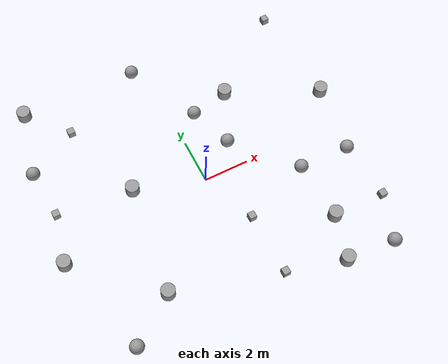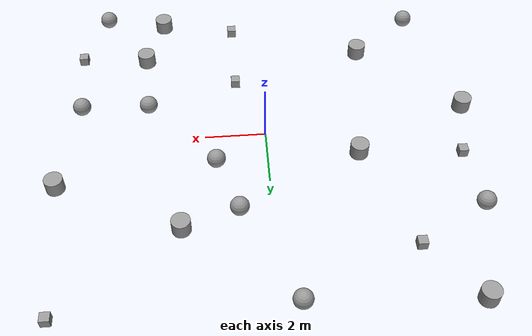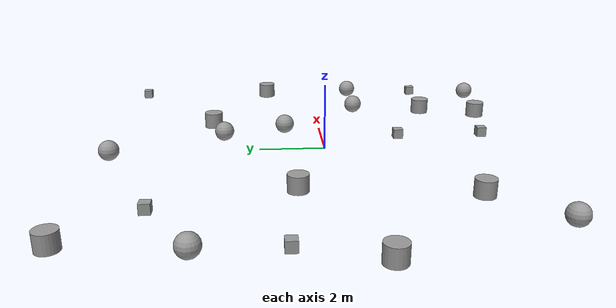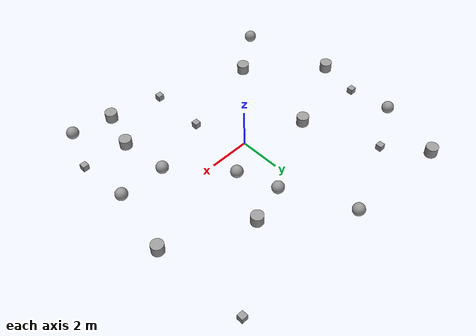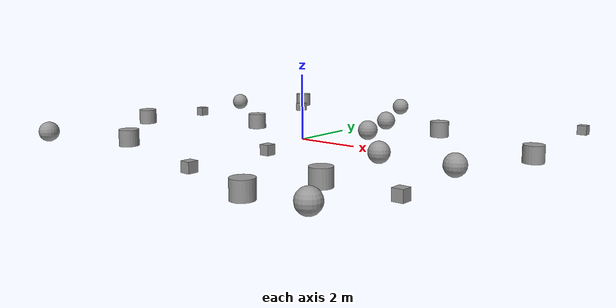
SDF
<?xml version='1.0'?>
<sdf version='1.7'>
  <model name='environment'>
    <link name='link_0'>
      <inertial>
        <mass>1</mass>
        <inertia>
          <ixx>0.166667</ixx>
          <ixy>0</ixy>
          <ixz>0</ixz>
          <iyy>0.166667</iyy>
          <iyz>0</iyz>
          <izz>0.166667</izz>
        </inertia>
        <pose frame=''>0 0 0 0 -0 0</pose>
      </inertial>
      <pose frame=''>0.908194 -5.21027 0.15 0 -0 0</pose>
      <gravity>1</gravity>
      <self_collide>0</self_collide>
      <kinematic>0</kinematic>
      <enable_wind>0</enable_wind>
      <visual name='visual'>
        <pose frame=''>0 0 0 0 -0 0</pose>
        <geometry>
          <box>
            <size>0.3 0.3 0.3</size>
          </box>
        </geometry>
        <material>
          <lighting>1</lighting>
          <script>
            <uri>file://media/materials/scripts/gazebo.material</uri>
            <name>Gazebo/Grey</name>
          </script>
          <shader type='vertex'>
            <normal_map>__default__</normal_map>
          </shader>
          <ambient>0.3 0.3 0.3 1</ambient>
          <diffuse>0.7 0.7 0.7 1</diffuse>
          <specular>0.01 0.01 0.01 1</specular>
          <emissive>0 0 0 1</emissive>
        </material>
        <transparency>0</transparency>
        <cast_shadows>1</cast_shadows>
      </visual>
      <collision name='collision'>
        <laser_retro>0</laser_retro>
        <max_contacts>10</max_contacts>
        <pose frame=''>0 0 0 0 -0 0</pose>
        <geometry>
          <box>
            <size>0.3 0.3 0.3</size>
          </box>
        </geometry>
        <surface>
          <friction>
            <ode>
              <mu>1</mu>
              <mu2>1</mu2>
              <fdir1>0 0 0</fdir1>
              <slip1>0</slip1>
              <slip2>0</slip2>
            </ode>
            <torsional>
              <coefficient>1</coefficient>
              <patch_radius>0</patch_radius>
              <surface_radius>0</surface_radius>
              <use_patch_radius>1</use_patch_radius>
              <ode>
                <slip>0</slip>
              </ode>
            </torsional>
          </friction>
          <bounce>
            <restitution_coefficient>0</restitution_coefficient>
            <threshold>1e+06</threshold>
          </bounce>
          <contact>
            <collide_without_contact>0</collide_without_contact>
            <collide_without_contact_bitmask>1</collide_without_contact_bitmask>
            <collide_bitmask>1</collide_bitmask>
            <ode>
              <soft_cfm>0</soft_cfm>
              <soft_erp>0.2</soft_erp>
              <kp>1e+13</kp>
              <kd>1</kd>
              <max_vel>0.01</max_vel>
              <min_depth>0</min_depth>
            </ode>
            <bullet>
              <split_impulse>1</split_impulse>
              <split_impulse_penetration_threshold>-0.01</split_impulse_penetration_threshold>
              <soft_cfm>0</soft_cfm>
              <soft_erp>0.2</soft_erp>
              <kp>1e+13</kp>
              <kd>1</kd>
            </bullet>
          </contact>
        </surface>
      </collision>
    </link>
    <link name='link_0_0'>
      <inertial>
        <mass>1</mass>
        <inertia>
          <ixx>0.145833</ixx>
          <ixy>0</ixy>
          <ixz>0</ixz>
          <iyy>0.145833</iyy>
          <iyz>0</iyz>
          <izz>0.125</izz>
        </inertia>
        <pose frame=''>0 0 0 0 -0 0</pose>
      </inertial>
      <pose frame=''>-5.78943 6.58029 0.15 0 -0 0</pose>
      <gravity>1</gravity>
      <self_collide>0</self_collide>
      <kinematic>0</kinematic>
      <enable_wind>0</enable_wind>
      <visual name='visual'>
        <pose frame=''>0 0 0 0 -0 0</pose>
        <geometry>
          <cylinder>
            <radius>0.3</radius>
            <length>0.5</length>
          </cylinder>
        </geometry>
        <material>
          <lighting>1</lighting>
          <script>
            <uri>file://media/materials/scripts/gazebo.material</uri>
            <name>Gazebo/Grey</name>
          </script>
          <shader type='vertex'>
            <normal_map>__default__</normal_map>
          </shader>
          <ambient>0.3 0.3 0.3 1</ambient>
          <diffuse>0.7 0.7 0.7 1</diffuse>
          <specular>0.01 0.01 0.01 1</specular>
          <emissive>0 0 0 1</emissive>
        </material>
        <transparency>0</transparency>
        <cast_shadows>1</cast_shadows>
      </visual>
      <collision name='collision'>
        <laser_retro>0</laser_retro>
        <max_contacts>10</max_contacts>
        <pose frame=''>0 0 0 0 -0 0</pose>
        <geometry>
          <cylinder>
            <radius>0.3</radius>
            <length>0.5</length>
          </cylinder>
        </geometry>
        <surface>
          <friction>
            <ode>
              <mu>1</mu>
              <mu2>1</mu2>
              <fdir1>0 0 0</fdir1>
              <slip1>0</slip1>
              <slip2>0</slip2>
            </ode>
            <torsional>
              <coefficient>1</coefficient>
              <patch_radius>0</patch_radius>
              <surface_radius>0</surface_radius>
              <use_patch_radius>1</use_patch_radius>
              <ode>
                <slip>0</slip>
              </ode>
            </torsional>
          </friction>
          <bounce>
            <restitution_coefficient>0</restitution_coefficient>
            <threshold>1e+06</threshold>
          </bounce>
          <contact>
            <collide_without_contact>0</collide_without_contact>
            <collide_without_contact_bitmask>1</collide_without_contact_bitmask>
            <collide_bitmask>1</collide_bitmask>
            <ode>
              <soft_cfm>0</soft_cfm>
              <soft_erp>0.2</soft_erp>
              <kp>1e+13</kp>
              <kd>1</kd>
              <max_vel>0.01</max_vel>
              <min_depth>0</min_depth>
            </ode>
            <bullet>
              <split_impulse>1</split_impulse>
              <split_impulse_penetration_threshold>-0.01</split_impulse_penetration_threshold>
              <soft_cfm>0</soft_cfm>
              <soft_erp>0.2</soft_erp>
              <kp>1e+13</kp>
              <kd>1</kd>
            </bullet>
          </contact>
        </surface>
      </collision>
    </link>
    <link name='link_0_0_clone'>
      <inertial>
        <mass>1</mass>
        <inertia>
          <ixx>0.145833</ixx>
          <ixy>0</ixy>
          <ixz>0</ixz>
          <iyy>0.145833</iyy>
          <iyz>0</iyz>
          <izz>0.125</izz>
        </inertia>
        <pose frame=''>0 0 0 0 -0 0</pose>
      </inertial>
      <pose frame=''>2.78522 3.59353 0.15 0 -0 0</pose>
      <gravity>1</gravity>
      <self_collide>0</self_collide>
      <kinematic>0</kinematic>
      <enable_wind>0</enable_wind>
      <visual name='visual_0'>
        <pose frame=''>0 0 0 0 -0 0</pose>
        <geometry>
          <cylinder>
            <radius>0.3</radius>
            <length>0.5</length>
          </cylinder>
        </geometry>
        <material>
          <lighting>1</lighting>
          <script>
            <uri>file://media/materials/scripts/gazebo.material</uri>
            <name>Gazebo/Grey</name>
          </script>
          <shader type='vertex'>
            <normal_map>__default__</normal_map>
          </shader>
          <ambient>0.3 0.3 0.3 1</ambient>
          <diffuse>0.7 0.7 0.7 1</diffuse>
          <specular>0.01 0.01 0.01 1</specular>
          <emissive>0 0 0 1</emissive>
        </material>
        <transparency>0</transparency>
        <cast_shadows>1</cast_shadows>
      </visual>
      <collision name='collision'>
        <laser_retro>0</laser_retro>
        <max_contacts>10</max_contacts>
        <pose frame=''>0 0 0 0 -0 0</pose>
        <geometry>
          <cylinder>
            <radius>0.3</radius>
            <length>0.5</length>
          </cylinder>
        </geometry>
        <surface>
          <friction>
            <ode>
              <mu>1</mu>
              <mu2>1</mu2>
              <fdir1>0 0 0</fdir1>
              <slip1>0</slip1>
              <slip2>0</slip2>
            </ode>
            <torsional>
              <coefficient>1</coefficient>
              <patch_radius>0</patch_radius>
              <surface_radius>0</surface_radius>
              <use_patch_radius>1</use_patch_radius>
              <ode>
                <slip>0</slip>
              </ode>
            </torsional>
          </friction>
          <bounce>
            <restitution_coefficient>0</restitution_coefficient>
            <threshold>1e+06</threshold>
          </bounce>
          <contact>
            <collide_without_contact>0</collide_without_contact>
            <collide_without_contact_bitmask>1</collide_without_contact_bitmask>
            <collide_bitmask>1</collide_bitmask>
            <ode>
              <soft_cfm>0</soft_cfm>
              <soft_erp>0.2</soft_erp>
              <kp>1e+13</kp>
              <kd>1</kd>
              <max_vel>0.01</max_vel>
              <min_depth>0</min_depth>
            </ode>
            <bullet>
              <split_impulse>1</split_impulse>
              <split_impulse_penetration_threshold>-0.01</split_impulse_penetration_threshold>
              <soft_cfm>0</soft_cfm>
              <soft_erp>0.2</soft_erp>
              <kp>1e+13</kp>
              <kd>1</kd>
            </bullet>
          </contact>
        </surface>
      </collision>
    </link>
    <link name='link_0_0_clone_0'>
      <inertial>
        <mass>1</mass>
        <inertia>
          <ixx>0.145833</ixx>
          <ixy>0</ixy>
          <ixz>0</ixz>
          <iyy>0.145833</iyy>
          <iyz>0</iyz>
          <izz>0.125</izz>
        </inertia>
        <pose frame=''>0 0 0 0 -0 0</pose>
      </inertial>
      <pose frame=''>6.74648 1.73015 0.15 0 -0 0</pose>
      <gravity>1</gravity>
      <self_collide>0</self_collide>
      <kinematic>0</kinematic>
      <enable_wind>0</enable_wind>
      <visual name='visual_0'>
        <pose frame=''>0 0 0 0 -0 0</pose>
        <geometry>
          <cylinder>
            <radius>0.3</radius>
            <length>0.5</length>
          </cylinder>
        </geometry>
        <material>
          <lighting>1</lighting>
          <script>
            <uri>file://media/materials/scripts/gazebo.material</uri>
            <name>Gazebo/Grey</name>
          </script>
          <shader type='vertex'>
            <normal_map>__default__</normal_map>
          </shader>
          <ambient>0.3 0.3 0.3 1</ambient>
          <diffuse>0.7 0.7 0.7 1</diffuse>
          <specular>0.01 0.01 0.01 1</specular>
          <emissive>0 0 0 1</emissive>
        </material>
        <transparency>0</transparency>
        <cast_shadows>1</cast_shadows>
      </visual>
      <collision name='collision'>
        <laser_retro>0</laser_retro>
        <max_contacts>10</max_contacts>
        <pose frame=''>0 0 0 0 -0 0</pose>
        <geometry>
          <cylinder>
            <radius>0.3</radius>
            <length>0.5</length>
          </cylinder>
        </geometry>
        <surface>
          <friction>
            <ode>
              <mu>1</mu>
              <mu2>1</mu2>
              <fdir1>0 0 0</fdir1>
              <slip1>0</slip1>
              <slip2>0</slip2>
            </ode>
            <torsional>
              <coefficient>1</coefficient>
              <patch_radius>0</patch_radius>
              <surface_radius>0</surface_radius>
              <use_patch_radius>1</use_patch_radius>
              <ode>
                <slip>0</slip>
              </ode>
            </torsional>
          </friction>
          <bounce>
            <restitution_coefficient>0</restitution_coefficient>
            <threshold>1e+06</threshold>
          </bounce>
          <contact>
            <collide_without_contact>0</collide_without_contact>
            <collide_without_contact_bitmask>1</collide_without_contact_bitmask>
            <collide_bitmask>1</collide_bitmask>
            <ode>
              <soft_cfm>0</soft_cfm>
              <soft_erp>0.2</soft_erp>
              <kp>1e+13</kp>
              <kd>1</kd>
              <max_vel>0.01</max_vel>
              <min_depth>0</min_depth>
            </ode>
            <bullet>
              <split_impulse>1</split_impulse>
              <split_impulse_penetration_threshold>-0.01</split_impulse_penetration_threshold>
              <soft_cfm>0</soft_cfm>
              <soft_erp>0.2</soft_erp>
              <kp>1e+13</kp>
              <kd>1</kd>
            </bullet>
          </contact>
        </surface>
      </collision>
    </link>
    <link name='link_0_0_clone_1'>
      <inertial>
        <mass>1</mass>
        <inertia>
          <ixx>0.145833</ixx>
          <ixy>0</ixy>
          <ixz>0</ixz>
          <iyy>0.145833</iyy>
          <iyz>0</iyz>
          <izz>0.125</izz>
        </inertia>
        <pose frame=''>0 0 0 0 -0 0</pose>
      </inertial>
      <pose frame=''>4.05011 -3.92433 0.15 0 -0 0</pose>
      <gravity>1</gravity>
      <self_collide>0</self_collide>
      <kinematic>0</kinematic>
      <enable_wind>0</enable_wind>
      <visual name='visual_0'>
        <pose frame=''>0 0 0 0 -0 0</pose>
        <geometry>
          <cylinder>
            <radius>0.3</radius>
            <length>0.5</length>
          </cylinder>
        </geometry>
        <material>
          <lighting>1</lighting>
          <script>
            <uri>file://media/materials/scripts/gazebo.material</uri>
            <name>Gazebo/Grey</name>
          </script>
          <shader type='vertex'>
            <normal_map>__default__</normal_map>
          </shader>
          <ambient>0.3 0.3 0.3 1</ambient>
          <diffuse>0.7 0.7 0.7 1</diffuse>
          <specular>0.01 0.01 0.01 1</specular>
          <emissive>0 0 0 1</emissive>
        </material>
        <transparency>0</transparency>
        <cast_shadows>1</cast_shadows>
      </visual>
      <collision name='collision'>
        <laser_retro>0</laser_retro>
        <max_contacts>10</max_contacts>
        <pose frame=''>0 0 0 0 -0 0</pose>
        <geometry>
          <cylinder>
            <radius>0.3</radius>
            <length>0.5</length>
          </cylinder>
        </geometry>
        <surface>
          <friction>
            <ode>
              <mu>1</mu>
              <mu2>1</mu2>
              <fdir1>0 0 0</fdir1>
              <slip1>0</slip1>
              <slip2>0</slip2>
            </ode>
            <torsional>
              <coefficient>1</coefficient>
              <patch_radius>0</patch_radius>
              <surface_radius>0</surface_radius>
              <use_patch_radius>1</use_patch_radius>
              <ode>
                <slip>0</slip>
              </ode>
            </torsional>
          </friction>
          <bounce>
            <restitution_coefficient>0</restitution_coefficient>
            <threshold>1e+06</threshold>
          </bounce>
          <contact>
            <collide_without_contact>0</collide_without_contact>
            <collide_without_contact_bitmask>1</collide_without_contact_bitmask>
            <collide_bitmask>1</collide_bitmask>
            <ode>
              <soft_cfm>0</soft_cfm>
              <soft_erp>0.2</soft_erp>
              <kp>1e+13</kp>
              <kd>1</kd>
              <max_vel>0.01</max_vel>
              <min_depth>0</min_depth>
            </ode>
            <bullet>
              <split_impulse>1</split_impulse>
              <split_impulse_penetration_threshold>-0.01</split_impulse_penetration_threshold>
              <soft_cfm>0</soft_cfm>
              <soft_erp>0.2</soft_erp>
              <kp>1e+13</kp>
              <kd>1</kd>
            </bullet>
          </contact>
        </surface>
      </collision>
    </link>
    <link name='link_0_0_clone_2'>
      <inertial>
        <mass>1</mass>
        <inertia>
          <ixx>0.145833</ixx>
          <ixy>0</ixy>
          <ixz>0</ixz>
          <iyy>0.145833</iyy>
          <iyz>0</iyz>
          <izz>0.125</izz>
        </inertia>
        <pose frame=''>0 0 0 0 -0 0</pose>
      </inertial>
      <pose frame=''>3.45908 -5.83793 0.15 0 -0 0</pose>
      <gravity>1</gravity>
      <self_collide>0</self_collide>
      <kinematic>0</kinematic>
      <enable_wind>0</enable_wind>
      <visual name='visual_0'>
        <pose frame=''>0 0 0 0 -0 0</pose>
        <geometry>
          <cylinder>
            <radius>0.3</radius>
            <length>0.5</length>
          </cylinder>
        </geometry>
        <material>
          <lighting>1</lighting>
          <script>
            <uri>file://media/materials/scripts/gazebo.material</uri>
            <name>Gazebo/Grey</name>
          </script>
          <shader type='vertex'>
            <normal_map>__default__</normal_map>
          </shader>
          <ambient>0.3 0.3 0.3 1</ambient>
          <diffuse>0.7 0.7 0.7 1</diffuse>
          <specular>0.01 0.01 0.01 1</specular>
          <emissive>0 0 0 1</emissive>
        </material>
        <transparency>0</transparency>
        <cast_shadows>1</cast_shadows>
      </visual>
      <collision name='collision'>
        <laser_retro>0</laser_retro>
        <max_contacts>10</max_contacts>
        <pose frame=''>0 0 0 0 -0 0</pose>
        <geometry>
          <cylinder>
            <radius>0.3</radius>
            <length>0.5</length>
          </cylinder>
        </geometry>
        <surface>
          <friction>
            <ode>
              <mu>1</mu>
              <mu2>1</mu2>
              <fdir1>0 0 0</fdir1>
              <slip1>0</slip1>
              <slip2>0</slip2>
            </ode>
            <torsional>
              <coefficient>1</coefficient>
              <patch_radius>0</patch_radius>
              <surface_radius>0</surface_radius>
              <use_patch_radius>1</use_patch_radius>
              <ode>
                <slip>0</slip>
              </ode>
            </torsional>
          </friction>
          <bounce>
            <restitution_coefficient>0</restitution_coefficient>
            <threshold>1e+06</threshold>
          </bounce>
          <contact>
            <collide_without_contact>0</collide_without_contact>
            <collide_without_contact_bitmask>1</collide_without_contact_bitmask>
            <collide_bitmask>1</collide_bitmask>
            <ode>
              <soft_cfm>0</soft_cfm>
              <soft_erp>0.2</soft_erp>
              <kp>1e+13</kp>
              <kd>1</kd>
              <max_vel>0.01</max_vel>
              <min_depth>0</min_depth>
            </ode>
            <bullet>
              <split_impulse>1</split_impulse>
              <split_impulse_penetration_threshold>-0.01</split_impulse_penetration_threshold>
              <soft_cfm>0</soft_cfm>
              <soft_erp>0.2</soft_erp>
              <kp>1e+13</kp>
              <kd>1</kd>
            </bullet>
          </contact>
        </surface>
      </collision>
    </link>
    <link name='link_0_0_clone_3'>
      <inertial>
        <mass>1</mass>
        <inertia>
          <ixx>0.145833</ixx>
          <ixy>0</ixy>
          <ixz>0</ixz>
          <iyy>0.145833</iyy>
          <iyz>0</iyz>
          <izz>0.125</izz>
        </inertia>
        <pose frame=''>0 0 0 0 -0 0</pose>
      </inertial>
      <pose frame=''>-3.65049 -3.83847 0.15 0 -0 0</pose>
      <gravity>1</gravity>
      <self_collide>0</self_collide>
      <kinematic>0</kinematic>
      <enable_wind>0</enable_wind>
      <visual name='visual_0'>
        <pose frame=''>0 0 0 0 -0 0</pose>
        <geometry>
          <cylinder>
            <radius>0.3</radius>
            <length>0.5</length>
          </cylinder>
        </geometry>
        <material>
          <lighting>1</lighting>
          <script>
            <uri>file://media/materials/scripts/gazebo.material</uri>
            <name>Gazebo/Grey</name>
          </script>
          <shader type='vertex'>
            <normal_map>__default__</normal_map>
          </shader>
          <ambient>0.3 0.3 0.3 1</ambient>
          <diffuse>0.7 0.7 0.7 1</diffuse>
          <specular>0.01 0.01 0.01 1</specular>
          <emissive>0 0 0 1</emissive>
        </material>
        <transparency>0</transparency>
        <cast_shadows>1</cast_shadows>
      </visual>
      <collision name='collision'>
        <laser_retro>0</laser_retro>
        <max_contacts>10</max_contacts>
        <pose frame=''>0 0 0 0 -0 0</pose>
        <geometry>
          <cylinder>
            <radius>0.3</radius>
            <length>0.5</length>
          </cylinder>
        </geometry>
        <surface>
          <friction>
            <ode>
              <mu>1</mu>
              <mu2>1</mu2>
              <fdir1>0 0 0</fdir1>
              <slip1>0</slip1>
              <slip2>0</slip2>
            </ode>
            <torsional>
              <coefficient>1</coefficient>
              <patch_radius>0</patch_radius>
              <surface_radius>0</surface_radius>
              <use_patch_radius>1</use_patch_radius>
              <ode>
                <slip>0</slip>
              </ode>
            </torsional>
          </friction>
          <bounce>
            <restitution_coefficient>0</restitution_coefficient>
            <threshold>1e+06</threshold>
          </bounce>
          <contact>
            <collide_without_contact>0</collide_without_contact>
            <collide_without_contact_bitmask>1</collide_without_contact_bitmask>
            <collide_bitmask>1</collide_bitmask>
            <ode>
              <soft_cfm>0</soft_cfm>
              <soft_erp>0.2</soft_erp>
              <kp>1e+13</kp>
              <kd>1</kd>
              <max_vel>0.01</max_vel>
              <min_depth>0</min_depth>
            </ode>
            <bullet>
              <split_impulse>1</split_impulse>
              <split_impulse_penetration_threshold>-0.01</split_impulse_penetration_threshold>
              <soft_cfm>0</soft_cfm>
              <soft_erp>0.2</soft_erp>
              <kp>1e+13</kp>
              <kd>1</kd>
            </bullet>
          </contact>
        </surface>
      </collision>
    </link>
    <link name='link_0_0_clone_4'>
      <inertial>
        <mass>1</mass>
        <inertia>
          <ixx>0.145833</ixx>
          <ixy>0</ixy>
          <ixz>0</ixz>
          <iyy>0.145833</iyy>
          <iyz>0</iyz>
          <izz>0.125</izz>
        </inertia>
        <pose frame=''>0 0 0 0 -0 0</pose>
      </inertial>
      <pose frame=''>-6.85159 -0.851003 0.15 0 -0 0</pose>
      <gravity>1</gravity>
      <self_collide>0</self_collide>
      <kinematic>0</kinematic>
      <enable_wind>0</enable_wind>
      <visual name='visual_0'>
        <pose frame=''>0 0 0 0 -0 0</pose>
        <geometry>
          <cylinder>
            <radius>0.3</radius>
            <length>0.5</length>
          </cylinder>
        </geometry>
        <material>
          <lighting>1</lighting>
          <script>
            <uri>file://media/materials/scripts/gazebo.material</uri>
            <name>Gazebo/Grey</name>
          </script>
          <shader type='vertex'>
            <normal_map>__default__</normal_map>
          </shader>
          <ambient>0.3 0.3 0.3 1</ambient>
          <diffuse>0.7 0.7 0.7 1</diffuse>
          <specular>0.01 0.01 0.01 1</specular>
          <emissive>0 0 0 1</emissive>
        </material>
        <transparency>0</transparency>
        <cast_shadows>1</cast_shadows>
      </visual>
      <collision name='collision'>
        <laser_retro>0</laser_retro>
        <max_contacts>10</max_contacts>
        <pose frame=''>0 0 0 0 -0 0</pose>
        <geometry>
          <cylinder>
            <radius>0.3</radius>
            <length>0.5</length>
          </cylinder>
        </geometry>
        <surface>
          <friction>
            <ode>
              <mu>1</mu>
              <mu2>1</mu2>
              <fdir1>0 0 0</fdir1>
              <slip1>0</slip1>
              <slip2>0</slip2>
            </ode>
            <torsional>
              <coefficient>1</coefficient>
              <patch_radius>0</patch_radius>
              <surface_radius>0</surface_radius>
              <use_patch_radius>1</use_patch_radius>
              <ode>
                <slip>0</slip>
              </ode>
            </torsional>
          </friction>
          <bounce>
            <restitution_coefficient>0</restitution_coefficient>
            <threshold>1e+06</threshold>
          </bounce>
          <contact>
            <collide_without_contact>0</collide_without_contact>
            <collide_without_contact_bitmask>1</collide_without_contact_bitmask>
            <collide_bitmask>1</collide_bitmask>
            <ode>
              <soft_cfm>0</soft_cfm>
              <soft_erp>0.2</soft_erp>
              <kp>1e+13</kp>
              <kd>1</kd>
              <max_vel>0.01</max_vel>
              <min_depth>0</min_depth>
            </ode>
            <bullet>
              <split_impulse>1</split_impulse>
              <split_impulse_penetration_threshold>-0.01</split_impulse_penetration_threshold>
              <soft_cfm>0</soft_cfm>
              <soft_erp>0.2</soft_erp>
              <kp>1e+13</kp>
              <kd>1</kd>
            </bullet>
          </contact>
        </surface>
      </collision>
    </link>
    <link name='link_0_0_clone_5'>
      <inertial>
        <mass>1</mass>
        <inertia>
          <ixx>0.145833</ixx>
          <ixy>0</ixy>
          <ixz>0</ixz>
          <iyy>0.145833</iyy>
          <iyz>0</iyz>
          <izz>0.125</izz>
        </inertia>
        <pose frame=''>0 0 0 0 -0 0</pose>
      </inertial>
      <pose frame=''>-3.00831 0.980712 0.15 0 -0 0</pose>
      <gravity>1</gravity>
      <self_collide>0</self_collide>
      <kinematic>0</kinematic>
      <enable_wind>0</enable_wind>
      <visual name='visual_0'>
        <pose frame=''>0 0 0 0 -0 0</pose>
        <geometry>
          <cylinder>
            <radius>0.3</radius>
            <length>0.5</length>
          </cylinder>
        </geometry>
        <material>
          <lighting>1</lighting>
          <script>
            <uri>file://media/materials/scripts/gazebo.material</uri>
            <name>Gazebo/Grey</name>
          </script>
          <shader type='vertex'>
            <normal_map>__default__</normal_map>
          </shader>
          <ambient>0.3 0.3 0.3 1</ambient>
          <diffuse>0.7 0.7 0.7 1</diffuse>
          <specular>0.01 0.01 0.01 1</specular>
          <emissive>0 0 0 1</emissive>
        </material>
        <transparency>0</transparency>
        <cast_shadows>1</cast_shadows>
      </visual>
      <collision name='collision'>
        <laser_retro>0</laser_retro>
        <max_contacts>10</max_contacts>
        <pose frame=''>0 0 0 0 -0 0</pose>
        <geometry>
          <cylinder>
            <radius>0.3</radius>
            <length>0.5</length>
          </cylinder>
        </geometry>
        <surface>
          <friction>
            <ode>
              <mu>1</mu>
              <mu2>1</mu2>
              <fdir1>0 0 0</fdir1>
              <slip1>0</slip1>
              <slip2>0</slip2>
            </ode>
            <torsional>
              <coefficient>1</coefficient>
              <patch_radius>0</patch_radius>
              <surface_radius>0</surface_radius>
              <use_patch_radius>1</use_patch_radius>
              <ode>
                <slip>0</slip>
              </ode>
            </torsional>
          </friction>
          <bounce>
            <restitution_coefficient>0</restitution_coefficient>
            <threshold>1e+06</threshold>
          </bounce>
          <contact>
            <collide_without_contact>0</collide_without_contact>
            <collide_without_contact_bitmask>1</collide_without_contact_bitmask>
            <collide_bitmask>1</collide_bitmask>
            <ode>
              <soft_cfm>0</soft_cfm>
              <soft_erp>0.2</soft_erp>
              <kp>1e+13</kp>
              <kd>1</kd>
              <max_vel>0.01</max_vel>
              <min_depth>0</min_depth>
            </ode>
            <bullet>
              <split_impulse>1</split_impulse>
              <split_impulse_penetration_threshold>-0.01</split_impulse_penetration_threshold>
              <soft_cfm>0</soft_cfm>
              <soft_erp>0.2</soft_erp>
              <kp>1e+13</kp>
              <kd>1</kd>
            </bullet>
          </contact>
        </surface>
      </collision>
    </link>
    <link name='link_0_clone'>
      <inertial>
        <mass>1</mass>
        <inertia>
          <ixx>0.166667</ixx>
          <ixy>0</ixy>
          <ixz>0</ixz>
          <iyy>0.166667</iyy>
          <iyz>0</iyz>
          <izz>0.166667</izz>
        </inertia>
        <pose frame=''>0 0 0 0 -0 0</pose>
      </inertial>
      <pose frame=''>0.885003 -2.45891 0.15 0 -0 0</pose>
      <gravity>1</gravity>
      <self_collide>0</self_collide>
      <kinematic>0</kinematic>
      <enable_wind>0</enable_wind>
      <visual name='visual'>
        <pose frame=''>0 0 0 0 -0 0</pose>
        <geometry>
          <box>
            <size>0.3 0.3 0.3</size>
          </box>
        </geometry>
        <material>
          <lighting>1</lighting>
          <script>
            <uri>file://media/materials/scripts/gazebo.material</uri>
            <name>Gazebo/Grey</name>
          </script>
          <shader type='vertex'>
            <normal_map>__default__</normal_map>
          </shader>
          <ambient>0.3 0.3 0.3 1</ambient>
          <diffuse>0.7 0.7 0.7 1</diffuse>
          <specular>0.01 0.01 0.01 1</specular>
          <emissive>0 0 0 1</emissive>
        </material>
        <transparency>0</transparency>
        <cast_shadows>1</cast_shadows>
      </visual>
      <collision name='collision'>
        <laser_retro>0</laser_retro>
        <max_contacts>10</max_contacts>
        <pose frame=''>0 0 0 0 -0 0</pose>
        <geometry>
          <box>
            <size>0.3 0.3 0.3</size>
          </box>
        </geometry>
        <surface>
          <friction>
            <ode>
              <mu>1</mu>
              <mu2>1</mu2>
              <fdir1>0 0 0</fdir1>
              <slip1>0</slip1>
              <slip2>0</slip2>
            </ode>
            <torsional>
              <coefficient>1</coefficient>
              <patch_radius>0</patch_radius>
              <surface_radius>0</surface_radius>
              <use_patch_radius>1</use_patch_radius>
              <ode>
                <slip>0</slip>
              </ode>
            </torsional>
          </friction>
          <bounce>
            <restitution_coefficient>0</restitution_coefficient>
            <threshold>1e+06</threshold>
          </bounce>
          <contact>
            <collide_without_contact>0</collide_without_contact>
            <collide_without_contact_bitmask>1</collide_without_contact_bitmask>
            <collide_bitmask>1</collide_bitmask>
            <ode>
              <soft_cfm>0</soft_cfm>
              <soft_erp>0.2</soft_erp>
              <kp>1e+13</kp>
              <kd>1</kd>
              <max_vel>0.01</max_vel>
              <min_depth>0</min_depth>
            </ode>
            <bullet>
              <split_impulse>1</split_impulse>
              <split_impulse_penetration_threshold>-0.01</split_impulse_penetration_threshold>
              <soft_cfm>0</soft_cfm>
              <soft_erp>0.2</soft_erp>
              <kp>1e+13</kp>
              <kd>1</kd>
            </bullet>
          </contact>
        </surface>
      </collision>
    </link>
    <link name='link_0_clone_0'>
      <inertial>
        <mass>1</mass>
        <inertia>
          <ixx>0.166667</ixx>
          <ixy>0</ixy>
          <ixz>0</ixz>
          <iyy>0.166667</iyy>
          <iyz>0</iyz>
          <izz>0.166667</izz>
        </inertia>
        <pose frame=''>0 0 0 0 -0 0</pose>
      </inertial>
      <pose frame=''>6.31115 -4.0339 0.15 0 -0 0</pose>
      <gravity>1</gravity>
      <self_collide>0</self_collide>
      <kinematic>0</kinematic>
      <enable_wind>0</enable_wind>
      <visual name='visual'>
        <pose frame=''>0 0 0 0 -0 0</pose>
        <geometry>
          <box>
            <size>0.3 0.3 0.3</size>
          </box>
        </geometry>
        <material>
          <lighting>1</lighting>
          <script>
            <uri>file://media/materials/scripts/gazebo.material</uri>
            <name>Gazebo/Grey</name>
          </script>
          <shader type='vertex'>
            <normal_map>__default__</normal_map>
          </shader>
          <ambient>0.3 0.3 0.3 1</ambient>
          <diffuse>0.7 0.7 0.7 1</diffuse>
          <specular>0.01 0.01 0.01 1</specular>
          <emissive>0 0 0 1</emissive>
        </material>
        <transparency>0</transparency>
        <cast_shadows>1</cast_shadows>
      </visual>
      <collision name='collision'>
        <laser_retro>0</laser_retro>
        <max_contacts>10</max_contacts>
        <pose frame=''>0 0 0 0 -0 0</pose>
        <geometry>
          <box>
            <size>0.3 0.3 0.3</size>
          </box>
        </geometry>
        <surface>
          <friction>
            <ode>
              <mu>1</mu>
              <mu2>1</mu2>
              <fdir1>0 0 0</fdir1>
              <slip1>0</slip1>
              <slip2>0</slip2>
            </ode>
            <torsional>
              <coefficient>1</coefficient>
              <patch_radius>0</patch_radius>
              <surface_radius>0</surface_radius>
              <use_patch_radius>1</use_patch_radius>
              <ode>
                <slip>0</slip>
              </ode>
            </torsional>
          </friction>
          <bounce>
            <restitution_coefficient>0</restitution_coefficient>
            <threshold>1e+06</threshold>
          </bounce>
          <contact>
            <collide_without_contact>0</collide_without_contact>
            <collide_without_contact_bitmask>1</collide_without_contact_bitmask>
            <collide_bitmask>1</collide_bitmask>
            <ode>
              <soft_cfm>0</soft_cfm>
              <soft_erp>0.2</soft_erp>
              <kp>1e+13</kp>
              <kd>1</kd>
              <max_vel>0.01</max_vel>
              <min_depth>0</min_depth>
            </ode>
            <bullet>
              <split_impulse>1</split_impulse>
              <split_impulse_penetration_threshold>-0.01</split_impulse_penetration_threshold>
              <soft_cfm>0</soft_cfm>
              <soft_erp>0.2</soft_erp>
              <kp>1e+13</kp>
              <kd>1</kd>
            </bullet>
          </contact>
        </surface>
      </collision>
    </link>
    <link name='link_0_clone_1'>
      <inertial>
        <mass>1</mass>
        <inertia>
          <ixx>0.166667</ixx>
          <ixy>0</ixy>
          <ixz>0</ixz>
          <iyy>0.166667</iyy>
          <iyz>0</iyz>
          <izz>0.166667</izz>
        </inertia>
        <pose frame=''>0 0 0 0 -0 0</pose>
      </inertial>
      <pose frame=''>6.44714 6.427 0.15 0 -0 0</pose>
      <gravity>1</gravity>
      <self_collide>0</self_collide>
      <kinematic>0</kinematic>
      <enable_wind>0</enable_wind>
      <visual name='visual'>
        <pose frame=''>0 0 0 0 -0 0</pose>
        <geometry>
          <box>
            <size>0.3 0.3 0.3</size>
          </box>
        </geometry>
        <material>
          <lighting>1</lighting>
          <script>
            <uri>file://media/materials/scripts/gazebo.material</uri>
            <name>Gazebo/Grey</name>
          </script>
          <shader type='vertex'>
            <normal_map>__default__</normal_map>
          </shader>
          <ambient>0.3 0.3 0.3 1</ambient>
          <diffuse>0.7 0.7 0.7 1</diffuse>
          <specular>0.01 0.01 0.01 1</specular>
          <emissive>0 0 0 1</emissive>
        </material>
        <transparency>0</transparency>
        <cast_shadows>1</cast_shadows>
      </visual>
      <collision name='collision'>
        <laser_retro>0</laser_retro>
        <max_contacts>10</max_contacts>
        <pose frame=''>0 0 0 0 -0 0</pose>
        <geometry>
          <box>
            <size>0.3 0.3 0.3</size>
          </box>
        </geometry>
        <surface>
          <friction>
            <ode>
              <mu>1</mu>
              <mu2>1</mu2>
              <fdir1>0 0 0</fdir1>
              <slip1>0</slip1>
              <slip2>0</slip2>
            </ode>
            <torsional>
              <coefficient>1</coefficient>
              <patch_radius>0</patch_radius>
              <surface_radius>0</surface_radius>
              <use_patch_radius>1</use_patch_radius>
              <ode>
                <slip>0</slip>
              </ode>
            </torsional>
          </friction>
          <bounce>
            <restitution_coefficient>0</restitution_coefficient>
            <threshold>1e+06</threshold>
          </bounce>
          <contact>
            <collide_without_contact>0</collide_without_contact>
            <collide_without_contact_bitmask>1</collide_without_contact_bitmask>
            <collide_bitmask>1</collide_bitmask>
            <ode>
              <soft_cfm>0</soft_cfm>
              <soft_erp>0.2</soft_erp>
              <kp>1e+13</kp>
              <kd>1</kd>
              <max_vel>0.01</max_vel>
              <min_depth>0</min_depth>
            </ode>
            <bullet>
              <split_impulse>1</split_impulse>
              <split_impulse_penetration_threshold>-0.01</split_impulse_penetration_threshold>
              <soft_cfm>0</soft_cfm>
              <soft_erp>0.2</soft_erp>
              <kp>1e+13</kp>
              <kd>1</kd>
            </bullet>
          </contact>
        </surface>
      </collision>
    </link>
    <link name='link_0_clone_2'>
      <inertial>
        <mass>1</mass>
        <inertia>
          <ixx>0.166667</ixx>
          <ixy>0</ixy>
          <ixz>0</ixz>
          <iyy>0.166667</iyy>
          <iyz>0</iyz>
          <izz>0.166667</izz>
        </inertia>
        <pose frame=''>0 0 0 0 -0 0</pose>
      </inertial>
      <pose frame=''>-4.27272 4.7382 0.15 0 -0 0</pose>
      <gravity>1</gravity>
      <self_collide>0</self_collide>
      <kinematic>0</kinematic>
      <enable_wind>0</enable_wind>
      <visual name='visual'>
        <pose frame=''>0 0 0 0 -0 0</pose>
        <geometry>
          <box>
            <size>0.3 0.3 0.3</size>
          </box>
        </geometry>
        <material>
          <lighting>1</lighting>
          <script>
            <uri>file://media/materials/scripts/gazebo.material</uri>
            <name>Gazebo/Grey</name>
          </script>
          <shader type='vertex'>
            <normal_map>__default__</normal_map>
          </shader>
          <ambient>0.3 0.3 0.3 1</ambient>
          <diffuse>0.7 0.7 0.7 1</diffuse>
          <specular>0.01 0.01 0.01 1</specular>
          <emissive>0 0 0 1</emissive>
        </material>
        <transparency>0</transparency>
        <cast_shadows>1</cast_shadows>
      </visual>
      <collision name='collision'>
        <laser_retro>0</laser_retro>
        <max_contacts>10</max_contacts>
        <pose frame=''>0 0 0 0 -0 0</pose>
        <geometry>
          <box>
            <size>0.3 0.3 0.3</size>
          </box>
        </geometry>
        <surface>
          <friction>
            <ode>
              <mu>1</mu>
              <mu2>1</mu2>
              <fdir1>0 0 0</fdir1>
              <slip1>0</slip1>
              <slip2>0</slip2>
            </ode>
            <torsional>
              <coefficient>1</coefficient>
              <patch_radius>0</patch_radius>
              <surface_radius>0</surface_radius>
              <use_patch_radius>1</use_patch_radius>
              <ode>
                <slip>0</slip>
              </ode>
            </torsional>
          </friction>
          <bounce>
            <restitution_coefficient>0</restitution_coefficient>
            <threshold>1e+06</threshold>
          </bounce>
          <contact>
            <collide_without_contact>0</collide_without_contact>
            <collide_without_contact_bitmask>1</collide_without_contact_bitmask>
            <collide_bitmask>1</collide_bitmask>
            <ode>
              <soft_cfm>0</soft_cfm>
              <soft_erp>0.2</soft_erp>
              <kp>1e+13</kp>
              <kd>1</kd>
              <max_vel>0.01</max_vel>
              <min_depth>0</min_depth>
            </ode>
            <bullet>
              <split_impulse>1</split_impulse>
              <split_impulse_penetration_threshold>-0.01</split_impulse_penetration_threshold>
              <soft_cfm>0</soft_cfm>
              <soft_erp>0.2</soft_erp>
              <kp>1e+13</kp>
              <kd>1</kd>
            </bullet>
          </contact>
        </surface>
      </collision>
    </link>
    <link name='link_0_clone_3'>
      <inertial>
        <mass>1</mass>
        <inertia>
          <ixx>0.166667</ixx>
          <ixy>0</ixy>
          <ixz>0</ixz>
          <iyy>0.166667</iyy>
          <iyz>0</iyz>
          <izz>0.166667</izz>
        </inertia>
        <pose frame=''>0 0 0 0 -0 0</pose>
      </inertial>
      <pose frame=''>-6.34835 1.30562 0.15 0 -0 0</pose>
      <gravity>1</gravity>
      <self_collide>0</self_collide>
      <kinematic>0</kinematic>
      <enable_wind>0</enable_wind>
      <visual name='visual'>
        <pose frame=''>0 0 0 0 -0 0</pose>
        <geometry>
          <box>
            <size>0.3 0.3 0.3</size>
          </box>
        </geometry>
        <material>
          <lighting>1</lighting>
          <script>
            <uri>file://media/materials/scripts/gazebo.material</uri>
            <name>Gazebo/Grey</name>
          </script>
          <shader type='vertex'>
            <normal_map>__default__</normal_map>
          </shader>
          <ambient>0.3 0.3 0.3 1</ambient>
          <diffuse>0.7 0.7 0.7 1</diffuse>
          <specular>0.01 0.01 0.01 1</specular>
          <emissive>0 0 0 1</emissive>
        </material>
        <transparency>0</transparency>
        <cast_shadows>1</cast_shadows>
      </visual>
      <collision name='collision'>
        <laser_retro>0</laser_retro>
        <max_contacts>10</max_contacts>
        <pose frame=''>0 0 0 0 -0 0</pose>
        <geometry>
          <box>
            <size>0.3 0.3 0.3</size>
          </box>
        </geometry>
        <surface>
          <friction>
            <ode>
              <mu>1</mu>
              <mu2>1</mu2>
              <fdir1>0 0 0</fdir1>
              <slip1>0</slip1>
              <slip2>0</slip2>
            </ode>
            <torsional>
              <coefficient>1</coefficient>
              <patch_radius>0</patch_radius>
              <surface_radius>0</surface_radius>
              <use_patch_radius>1</use_patch_radius>
              <ode>
                <slip>0</slip>
              </ode>
            </torsional>
          </friction>
          <bounce>
            <restitution_coefficient>0</restitution_coefficient>
            <threshold>1e+06</threshold>
          </bounce>
          <contact>
            <collide_without_contact>0</collide_without_contact>
            <collide_without_contact_bitmask>1</collide_without_contact_bitmask>
            <collide_bitmask>1</collide_bitmask>
            <ode>
              <soft_cfm>0</soft_cfm>
              <soft_erp>0.2</soft_erp>
              <kp>1e+13</kp>
              <kd>1</kd>
              <max_vel>0.01</max_vel>
              <min_depth>0</min_depth>
            </ode>
            <bullet>
              <split_impulse>1</split_impulse>
              <split_impulse_penetration_threshold>-0.01</split_impulse_penetration_threshold>
              <soft_cfm>0</soft_cfm>
              <soft_erp>0.2</soft_erp>
              <kp>1e+13</kp>
              <kd>1</kd>
            </bullet>
          </contact>
        </surface>
      </collision>
    </link>
    <link name='link_1'>
      <inertial>
        <mass>1</mass>
        <inertia>
          <ixx>0.1</ixx>
          <ixy>0</ixy>
          <ixz>0</ixz>
          <iyy>0.1</iyy>
          <iyz>0</iyz>
          <izz>0.1</izz>
        </inertia>
        <pose frame=''>0 0 0 0 -0 0</pose>
      </inertial>
      <pose frame=''>-0.583095 6.4093 0.3 0 -0 0</pose>
      <gravity>1</gravity>
      <self_collide>0</self_collide>
      <kinematic>0</kinematic>
      <enable_wind>0</enable_wind>
      <visual name='visual'>
        <pose frame=''>0 0 0 0 -0 0</pose>
        <geometry>
          <sphere>
            <radius>0.3</radius>
          </sphere>
        </geometry>
        <material>
          <lighting>1</lighting>
          <script>
            <uri>file://media/materials/scripts/gazebo.material</uri>
            <name>Gazebo/Grey</name>
          </script>
          <shader type='vertex'>
            <normal_map>__default__</normal_map>
          </shader>
          <ambient>0.3 0.3 0.3 1</ambient>
          <diffuse>0.7 0.7 0.7 1</diffuse>
          <specular>0.01 0.01 0.01 1</specular>
          <emissive>0 0 0 1</emissive>
        </material>
        <transparency>0</transparency>
        <cast_shadows>1</cast_shadows>
      </visual>
      <collision name='collision'>
        <laser_retro>0</laser_retro>
        <max_contacts>10</max_contacts>
        <pose frame=''>0 0 0 0 -0 0</pose>
        <geometry>
          <sphere>
            <radius>0.3</radius>
          </sphere>
        </geometry>
        <surface>
          <friction>
            <ode>
              <mu>1</mu>
              <mu2>1</mu2>
              <fdir1>0 0 0</fdir1>
              <slip1>0</slip1>
              <slip2>0</slip2>
            </ode>
            <torsional>
              <coefficient>1</coefficient>
              <patch_radius>0</patch_radius>
              <surface_radius>0</surface_radius>
              <use_patch_radius>1</use_patch_radius>
              <ode>
                <slip>0</slip>
              </ode>
            </torsional>
          </friction>
          <bounce>
            <restitution_coefficient>0</restitution_coefficient>
            <threshold>1e+06</threshold>
          </bounce>
          <contact>
            <collide_without_contact>0</collide_without_contact>
            <collide_without_contact_bitmask>1</collide_without_contact_bitmask>
            <collide_bitmask>1</collide_bitmask>
            <ode>
              <soft_cfm>0</soft_cfm>
              <soft_erp>0.2</soft_erp>
              <kp>1e+13</kp>
              <kd>1</kd>
              <max_vel>0.01</max_vel>
              <min_depth>0</min_depth>
            </ode>
            <bullet>
              <split_impulse>1</split_impulse>
              <split_impulse_penetration_threshold>-0.01</split_impulse_penetration_threshold>
              <soft_cfm>0</soft_cfm>
              <soft_erp>0.2</soft_erp>
              <kp>1e+13</kp>
              <kd>1</kd>
            </bullet>
          </contact>
        </surface>
      </collision>
    </link>
    <link name='link_1_clone'>
      <inertial>
        <mass>1</mass>
        <inertia>
          <ixx>0.1</ixx>
          <ixy>0</ixy>
          <ixz>0</ixz>
          <iyy>0.1</iyy>
          <iyz>0</iyz>
          <izz>0.1</izz>
        </inertia>
        <pose frame=''>0 0 0 0 -0 0</pose>
      </inertial>
      <pose frame=''>0.999834 3.12197 0.3 0 -0 0</pose>
      <gravity>1</gravity>
      <self_collide>0</self_collide>
      <kinematic>0</kinematic>
      <enable_wind>0</enable_wind>
      <visual name='visual'>
        <pose frame=''>0 0 0 0 -0 0</pose>
        <geometry>
          <sphere>
            <radius>0.3</radius>
          </sphere>
        </geometry>
        <material>
          <lighting>1</lighting>
          <script>
            <uri>file://media/materials/scripts/gazebo.material</uri>
            <name>Gazebo/Grey</name>
          </script>
          <shader type='vertex'>
            <normal_map>__default__</normal_map>
          </shader>
          <ambient>0.3 0.3 0.3 1</ambient>
          <diffuse>0.7 0.7 0.7 1</diffuse>
          <specular>0.01 0.01 0.01 1</specular>
          <emissive>0 0 0 1</emissive>
        </material>
        <transparency>0</transparency>
        <cast_shadows>1</cast_shadows>
      </visual>
      <collision name='collision'>
        <laser_retro>0</laser_retro>
        <max_contacts>10</max_contacts>
        <pose frame=''>0 0 0 0 -0 0</pose>
        <geometry>
          <sphere>
            <radius>0.3</radius>
          </sphere>
        </geometry>
        <surface>
          <friction>
            <ode>
              <mu>1</mu>
              <mu2>1</mu2>
              <fdir1>0 0 0</fdir1>
              <slip1>0</slip1>
              <slip2>0</slip2>
            </ode>
            <torsional>
              <coefficient>1</coefficient>
              <patch_radius>0</patch_radius>
              <surface_radius>0</surface_radius>
              <use_patch_radius>1</use_patch_radius>
              <ode>
                <slip>0</slip>
              </ode>
            </torsional>
          </friction>
          <bounce>
            <restitution_coefficient>0</restitution_coefficient>
            <threshold>1e+06</threshold>
          </bounce>
          <contact>
            <collide_without_contact>0</collide_without_contact>
            <collide_without_contact_bitmask>1</collide_without_contact_bitmask>
            <collide_bitmask>1</collide_bitmask>
            <ode>
              <soft_cfm>0</soft_cfm>
              <soft_erp>0.2</soft_erp>
              <kp>1e+13</kp>
              <kd>1</kd>
              <max_vel>0.01</max_vel>
              <min_depth>0</min_depth>
            </ode>
            <bullet>
              <split_impulse>1</split_impulse>
              <split_impulse_penetration_threshold>-0.01</split_impulse_penetration_threshold>
              <soft_cfm>0</soft_cfm>
              <soft_erp>0.2</soft_erp>
              <kp>1e+13</kp>
              <kd>1</kd>
            </bullet>
          </contact>
        </surface>
      </collision>
    </link>
    <link name='link_1_clone_0'>
      <inertial>
        <mass>1</mass>
        <inertia>
          <ixx>0.1</ixx>
          <ixy>0</ixy>
          <ixz>0</ixz>
          <iyy>0.1</iyy>
          <iyz>0</iyz>
          <izz>0.1</izz>
        </inertia>
        <pose frame=''>0 0 0 0 -0 0</pose>
      </inertial>
      <pose frame=''>1.6531 1.1793 0.3 0 -0 0</pose>
      <gravity>1</gravity>
      <self_collide>0</self_collide>
      <kinematic>0</kinematic>
      <enable_wind>0</enable_wind>
      <visual name='visual'>
        <pose frame=''>0 0 0 0 -0 0</pose>
        <geometry>
          <sphere>
            <radius>0.3</radius>
          </sphere>
        </geometry>
        <material>
          <lighting>1</lighting>
          <script>
            <uri>file://media/materials/scripts/gazebo.material</uri>
            <name>Gazebo/Grey</name>
          </script>
          <shader type='vertex'>
            <normal_map>__default__</normal_map>
          </shader>
          <ambient>0.3 0.3 0.3 1</ambient>
          <diffuse>0.7 0.7 0.7 1</diffuse>
          <specular>0.01 0.01 0.01 1</specular>
          <emissive>0 0 0 1</emissive>
        </material>
        <transparency>0</transparency>
        <cast_shadows>1</cast_shadows>
      </visual>
      <collision name='collision'>
        <laser_retro>0</laser_retro>
        <max_contacts>10</max_contacts>
        <pose frame=''>0 0 0 0 -0 0</pose>
        <geometry>
          <sphere>
            <radius>0.3</radius>
          </sphere>
        </geometry>
        <surface>
          <friction>
            <ode>
              <mu>1</mu>
              <mu2>1</mu2>
              <fdir1>0 0 0</fdir1>
              <slip1>0</slip1>
              <slip2>0</slip2>
            </ode>
            <torsional>
              <coefficient>1</coefficient>
              <patch_radius>0</patch_radius>
              <surface_radius>0</surface_radius>
              <use_patch_radius>1</use_patch_radius>
              <ode>
                <slip>0</slip>
              </ode>
            </torsional>
          </friction>
          <bounce>
            <restitution_coefficient>0</restitution_coefficient>
            <threshold>1e+06</threshold>
          </bounce>
          <contact>
            <collide_without_contact>0</collide_without_contact>
            <collide_without_contact_bitmask>1</collide_without_contact_bitmask>
            <collide_bitmask>1</collide_bitmask>
            <ode>
              <soft_cfm>0</soft_cfm>
              <soft_erp>0.2</soft_erp>
              <kp>1e+13</kp>
              <kd>1</kd>
              <max_vel>0.01</max_vel>
              <min_depth>0</min_depth>
            </ode>
            <bullet>
              <split_impulse>1</split_impulse>
              <split_impulse_penetration_threshold>-0.01</split_impulse_penetration_threshold>
              <soft_cfm>0</soft_cfm>
              <soft_erp>0.2</soft_erp>
              <kp>1e+13</kp>
              <kd>1</kd>
            </bullet>
          </contact>
        </surface>
      </collision>
    </link>
    <link name='link_1_clone_1'>
      <inertial>
        <mass>1</mass>
        <inertia>
          <ixx>0.1</ixx>
          <ixy>0</ixy>
          <ixz>0</ixz>
          <iyy>0.1</iyy>
          <iyz>0</iyz>
          <izz>0.1</izz>
        </inertia>
        <pose frame=''>0 0 0 0 -0 0</pose>
      </inertial>
      <pose frame=''>-6.51973 3.46598 0.3 0 -0 0</pose>
      <gravity>1</gravity>
      <self_collide>0</self_collide>
      <kinematic>0</kinematic>
      <enable_wind>0</enable_wind>
      <visual name='visual'>
        <pose frame=''>0 0 0 0 -0 0</pose>
        <geometry>
          <sphere>
            <radius>0.3</radius>
          </sphere>
        </geometry>
        <material>
          <lighting>1</lighting>
          <script>
            <uri>file://media/materials/scripts/gazebo.material</uri>
            <name>Gazebo/Grey</name>
          </script>
          <shader type='vertex'>
            <normal_map>__default__</normal_map>
          </shader>
          <ambient>0.3 0.3 0.3 1</ambient>
          <diffuse>0.7 0.7 0.7 1</diffuse>
          <specular>0.01 0.01 0.01 1</specular>
          <emissive>0 0 0 1</emissive>
        </material>
        <transparency>0</transparency>
        <cast_shadows>1</cast_shadows>
      </visual>
      <collision name='collision'>
        <laser_retro>0</laser_retro>
        <max_contacts>10</max_contacts>
        <pose frame=''>0 0 0 0 -0 0</pose>
        <geometry>
          <sphere>
            <radius>0.3</radius>
          </sphere>
        </geometry>
        <surface>
          <friction>
            <ode>
              <mu>1</mu>
              <mu2>1</mu2>
              <fdir1>0 0 0</fdir1>
              <slip1>0</slip1>
              <slip2>0</slip2>
            </ode>
            <torsional>
              <coefficient>1</coefficient>
              <patch_radius>0</patch_radius>
              <surface_radius>0</surface_radius>
              <use_patch_radius>1</use_patch_radius>
              <ode>
                <slip>0</slip>
              </ode>
            </torsional>
          </friction>
          <bounce>
            <restitution_coefficient>0</restitution_coefficient>
            <threshold>1e+06</threshold>
          </bounce>
          <contact>
            <collide_without_contact>0</collide_without_contact>
            <collide_without_contact_bitmask>1</collide_without_contact_bitmask>
            <collide_bitmask>1</collide_bitmask>
            <ode>
              <soft_cfm>0</soft_cfm>
              <soft_erp>0.2</soft_erp>
              <kp>1e+13</kp>
              <kd>1</kd>
              <max_vel>0.01</max_vel>
              <min_depth>0</min_depth>
            </ode>
            <bullet>
              <split_impulse>1</split_impulse>
              <split_impulse_penetration_threshold>-0.01</split_impulse_penetration_threshold>
              <soft_cfm>0</soft_cfm>
              <soft_erp>0.2</soft_erp>
              <kp>1e+13</kp>
              <kd>1</kd>
            </bullet>
          </contact>
        </surface>
      </collision>
    </link>
    <link name='link_1_clone_2'>
      <inertial>
        <mass>1</mass>
        <inertia>
          <ixx>0.1</ixx>
          <ixy>0</ixy>
          <ixz>0</ixz>
          <iyy>0.1</iyy>
          <iyz>0</iyz>
          <izz>0.1</izz>
        </inertia>
        <pose frame=''>0 0 0 0 -0 0</pose>
      </inertial>
      <pose frame=''>-5.66391 -5.31 0.3 0 -0 0</pose>
      <gravity>1</gravity>
      <self_collide>0</self_collide>
      <kinematic>0</kinematic>
      <enable_wind>0</enable_wind>
      <visual name='visual'>
        <pose frame=''>0 0 0 0 -0 0</pose>
        <geometry>
          <sphere>
            <radius>0.3</radius>
          </sphere>
        </geometry>
        <material>
          <lighting>1</lighting>
          <script>
            <uri>file://media/materials/scripts/gazebo.material</uri>
            <name>Gazebo/Grey</name>
          </script>
          <shader type='vertex'>
            <normal_map>__default__</normal_map>
          </shader>
          <ambient>0.3 0.3 0.3 1</ambient>
          <diffuse>0.7 0.7 0.7 1</diffuse>
          <specular>0.01 0.01 0.01 1</specular>
          <emissive>0 0 0 1</emissive>
        </material>
        <transparency>0</transparency>
        <cast_shadows>1</cast_shadows>
      </visual>
      <collision name='collision'>
        <laser_retro>0</laser_retro>
        <max_contacts>10</max_contacts>
        <pose frame=''>0 0 0 0 -0 0</pose>
        <geometry>
          <sphere>
            <radius>0.3</radius>
          </sphere>
        </geometry>
        <surface>
          <friction>
            <ode>
              <mu>1</mu>
              <mu2>1</mu2>
              <fdir1>0 0 0</fdir1>
              <slip1>0</slip1>
              <slip2>0</slip2>
            </ode>
            <torsional>
              <coefficient>1</coefficient>
              <patch_radius>0</patch_radius>
              <surface_radius>0</surface_radius>
              <use_patch_radius>1</use_patch_radius>
              <ode>
                <slip>0</slip>
              </ode>
            </torsional>
          </friction>
          <bounce>
            <restitution_coefficient>0</restitution_coefficient>
            <threshold>1e+06</threshold>
          </bounce>
          <contact>
            <collide_without_contact>0</collide_without_contact>
            <collide_without_contact_bitmask>1</collide_without_contact_bitmask>
            <collide_bitmask>1</collide_bitmask>
            <ode>
              <soft_cfm>0</soft_cfm>
              <soft_erp>0.2</soft_erp>
              <kp>1e+13</kp>
              <kd>1</kd>
              <max_vel>0.01</max_vel>
              <min_depth>0</min_depth>
            </ode>
            <bullet>
              <split_impulse>1</split_impulse>
              <split_impulse_penetration_threshold>-0.01</split_impulse_penetration_threshold>
              <soft_cfm>0</soft_cfm>
              <soft_erp>0.2</soft_erp>
              <kp>1e+13</kp>
              <kd>1</kd>
            </bullet>
          </contact>
        </surface>
      </collision>
    </link>
    <link name='link_1_clone_3'>
      <inertial>
        <mass>1</mass>
        <inertia>
          <ixx>0.1</ixx>
          <ixy>0</ixy>
          <ixz>0</ixz>
          <iyy>0.1</iyy>
          <iyz>0</iyz>
          <izz>0.1</izz>
        </inertia>
        <pose frame=''>0 0 0 0 -0 0</pose>
      </inertial>
      <pose frame=''>5.5376 -6.06409 0.3 0 -0 0</pose>
      <gravity>1</gravity>
      <self_collide>0</self_collide>
      <kinematic>0</kinematic>
      <enable_wind>0</enable_wind>
      <visual name='visual'>
        <pose frame=''>0 0 0 0 -0 0</pose>
        <geometry>
          <sphere>
            <radius>0.3</radius>
          </sphere>
        </geometry>
        <material>
          <lighting>1</lighting>
          <script>
            <uri>file://media/materials/scripts/gazebo.material</uri>
            <name>Gazebo/Grey</name>
          </script>
          <shader type='vertex'>
            <normal_map>__default__</normal_map>
          </shader>
          <ambient>0.3 0.3 0.3 1</ambient>
          <diffuse>0.7 0.7 0.7 1</diffuse>
          <specular>0.01 0.01 0.01 1</specular>
          <emissive>0 0 0 1</emissive>
        </material>
        <transparency>0</transparency>
        <cast_shadows>1</cast_shadows>
      </visual>
      <collision name='collision'>
        <laser_retro>0</laser_retro>
        <max_contacts>10</max_contacts>
        <pose frame=''>0 0 0 0 -0 0</pose>
        <geometry>
          <sphere>
            <radius>0.3</radius>
          </sphere>
        </geometry>
        <surface>
          <friction>
            <ode>
              <mu>1</mu>
              <mu2>1</mu2>
              <fdir1>0 0 0</fdir1>
              <slip1>0</slip1>
              <slip2>0</slip2>
            </ode>
            <torsional>
              <coefficient>1</coefficient>
              <patch_radius>0</patch_radius>
              <surface_radius>0</surface_radius>
              <use_patch_radius>1</use_patch_radius>
              <ode>
                <slip>0</slip>
              </ode>
            </torsional>
          </friction>
          <bounce>
            <restitution_coefficient>0</restitution_coefficient>
            <threshold>1e+06</threshold>
          </bounce>
          <contact>
            <collide_without_contact>0</collide_without_contact>
            <collide_without_contact_bitmask>1</collide_without_contact_bitmask>
            <collide_bitmask>1</collide_bitmask>
            <ode>
              <soft_cfm>0</soft_cfm>
              <soft_erp>0.2</soft_erp>
              <kp>1e+13</kp>
              <kd>1</kd>
              <max_vel>0.01</max_vel>
              <min_depth>0</min_depth>
            </ode>
            <bullet>
              <split_impulse>1</split_impulse>
              <split_impulse_penetration_threshold>-0.01</split_impulse_penetration_threshold>
              <soft_cfm>0</soft_cfm>
              <soft_erp>0.2</soft_erp>
              <kp>1e+13</kp>
              <kd>1</kd>
            </bullet>
          </contact>
        </surface>
      </collision>
    </link>
    <link name='link_1_clone_4'>
      <inertial>
        <mass>1</mass>
        <inertia>
          <ixx>0.1</ixx>
          <ixy>0</ixy>
          <ixz>0</ixz>
          <iyy>0.1</iyy>
          <iyz>0</iyz>
          <izz>0.1</izz>
        </inertia>
        <pose frame=''>0 0 0 0 -0 0</pose>
      </inertial>
      <pose frame=''>6.14527 -1.46046 0.3 0 -0 0</pose>
      <gravity>1</gravity>
      <self_collide>0</self_collide>
      <kinematic>0</kinematic>
      <enable_wind>0</enable_wind>
      <visual name='visual'>
        <pose frame=''>0 0 0 0 -0 0</pose>
        <geometry>
          <sphere>
            <radius>0.3</radius>
          </sphere>
        </geometry>
        <material>
          <lighting>1</lighting>
          <script>
            <uri>file://media/materials/scripts/gazebo.material</uri>
            <name>Gazebo/Grey</name>
          </script>
          <shader type='vertex'>
            <normal_map>__default__</normal_map>
          </shader>
          <ambient>0.3 0.3 0.3 1</ambient>
          <diffuse>0.7 0.7 0.7 1</diffuse>
          <specular>0.01 0.01 0.01 1</specular>
          <emissive>0 0 0 1</emissive>
        </material>
        <transparency>0</transparency>
        <cast_shadows>1</cast_shadows>
      </visual>
      <collision name='collision'>
        <laser_retro>0</laser_retro>
        <max_contacts>10</max_contacts>
        <pose frame=''>0 0 0 0 -0 0</pose>
        <geometry>
          <sphere>
            <radius>0.3</radius>
          </sphere>
        </geometry>
        <surface>
          <friction>
            <ode>
              <mu>1</mu>
              <mu2>1</mu2>
              <fdir1>0 0 0</fdir1>
              <slip1>0</slip1>
              <slip2>0</slip2>
            </ode>
            <torsional>
              <coefficient>1</coefficient>
              <patch_radius>0</patch_radius>
              <surface_radius>0</surface_radius>
              <use_patch_radius>1</use_patch_radius>
              <ode>
                <slip>0</slip>
              </ode>
            </torsional>
          </friction>
          <bounce>
            <restitution_coefficient>0</restitution_coefficient>
            <threshold>1e+06</threshold>
          </bounce>
          <contact>
            <collide_without_contact>0</collide_without_contact>
            <collide_without_contact_bitmask>1</collide_without_contact_bitmask>
            <collide_bitmask>1</collide_bitmask>
            <ode>
              <soft_cfm>0</soft_cfm>
              <soft_erp>0.2</soft_erp>
              <kp>1e+13</kp>
              <kd>1</kd>
              <max_vel>0.01</max_vel>
              <min_depth>0</min_depth>
            </ode>
            <bullet>
              <split_impulse>1</split_impulse>
              <split_impulse_penetration_threshold>-0.01</split_impulse_penetration_threshold>
              <soft_cfm>0</soft_cfm>
              <soft_erp>0.2</soft_erp>
              <kp>1e+13</kp>
              <kd>1</kd>
            </bullet>
          </contact>
        </surface>
      </collision>
    </link>
    <link name='link_1_clone_5'>
      <inertial>
        <mass>1</mass>
        <inertia>
          <ixx>0.1</ixx>
          <ixy>0</ixy>
          <ixz>0</ixz>
          <iyy>0.1</iyy>
          <iyz>0</iyz>
          <izz>0.1</izz>
        </inertia>
        <pose frame=''>0 0 0 0 -0 0</pose>
      </inertial>
      <pose frame=''>3.88821 -1.39365 0.3 0 -0 0</pose>
      <gravity>1</gravity>
      <self_collide>0</self_collide>
      <kinematic>0</kinematic>
      <enable_wind>0</enable_wind>
      <visual name='visual'>
        <pose frame=''>0 0 0 0 -0 0</pose>
        <geometry>
          <sphere>
            <radius>0.3</radius>
          </sphere>
        </geometry>
        <material>
          <lighting>1</lighting>
          <script>
            <uri>file://media/materials/scripts/gazebo.material</uri>
            <name>Gazebo/Grey</name>
          </script>
          <shader type='vertex'>
            <normal_map>__default__</normal_map>
          </shader>
          <ambient>0.3 0.3 0.3 1</ambient>
          <diffuse>0.7 0.7 0.7 1</diffuse>
          <specular>0.01 0.01 0.01 1</specular>
          <emissive>0 0 0 1</emissive>
        </material>
        <transparency>0</transparency>
        <cast_shadows>1</cast_shadows>
      </visual>
      <collision name='collision'>
        <laser_retro>0</laser_retro>
        <max_contacts>10</max_contacts>
        <pose frame=''>0 0 0 0 -0 0</pose>
        <geometry>
          <sphere>
            <radius>0.3</radius>
          </sphere>
        </geometry>
        <surface>
          <friction>
            <ode>
              <mu>1</mu>
              <mu2>1</mu2>
              <fdir1>0 0 0</fdir1>
              <slip1>0</slip1>
              <slip2>0</slip2>
            </ode>
            <torsional>
              <coefficient>1</coefficient>
              <patch_radius>0</patch_radius>
              <surface_radius>0</surface_radius>
              <use_patch_radius>1</use_patch_radius>
              <ode>
                <slip>0</slip>
              </ode>
            </torsional>
          </friction>
          <bounce>
            <restitution_coefficient>0</restitution_coefficient>
            <threshold>1e+06</threshold>
          </bounce>
          <contact>
            <collide_without_contact>0</collide_without_contact>
            <collide_without_contact_bitmask>1</collide_without_contact_bitmask>
            <collide_bitmask>1</collide_bitmask>
            <ode>
              <soft_cfm>0</soft_cfm>
              <soft_erp>0.2</soft_erp>
              <kp>1e+13</kp>
              <kd>1</kd>
              <max_vel>0.01</max_vel>
              <min_depth>0</min_depth>
            </ode>
            <bullet>
              <split_impulse>1</split_impulse>
              <split_impulse_penetration_threshold>-0.01</split_impulse_penetration_threshold>
              <soft_cfm>0</soft_cfm>
              <soft_erp>0.2</soft_erp>
              <kp>1e+13</kp>
              <kd>1</kd>
            </bullet>
          </contact>
        </surface>
      </collision>
    </link>
    <static>1</static>
    <allow_auto_disable>1</allow_auto_disable>
  </model>
</sdf>
